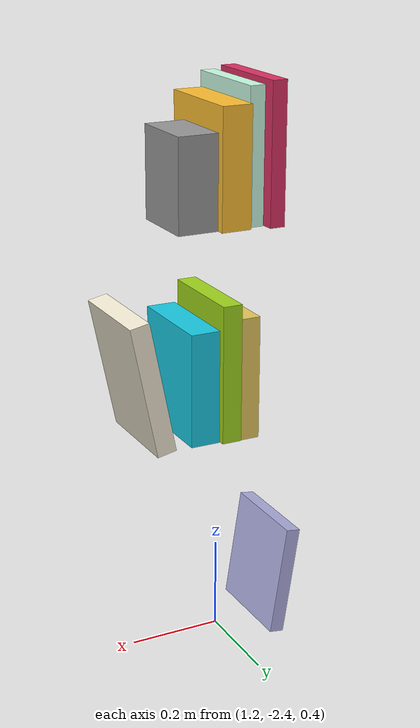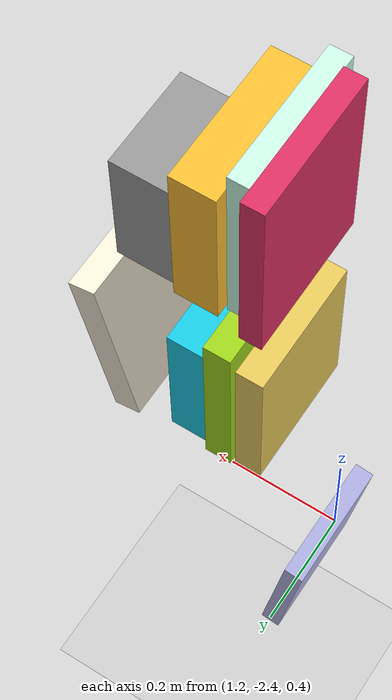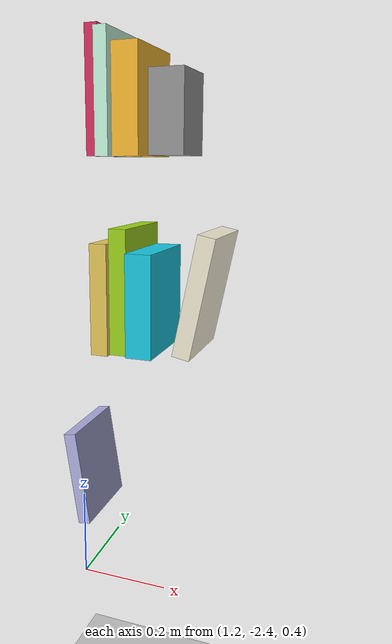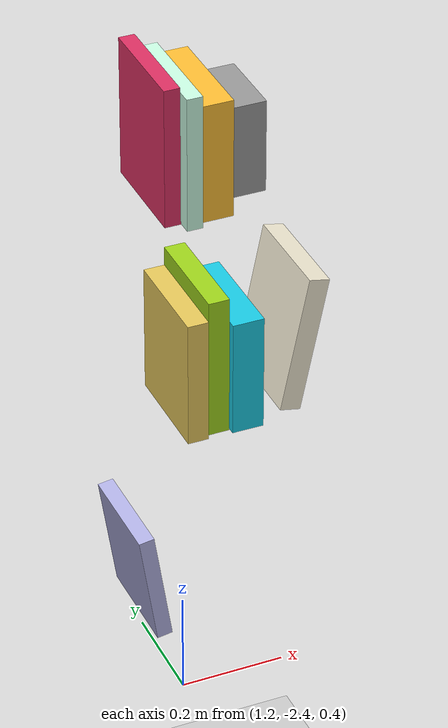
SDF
<sdf version="1.7">
 <world name="default">
  <model name="ground_plane">
   <static>1</static>
   <link name="link">
    <collision name="collision">
     <geometry><plane><normal>0 0 1</normal><size>100 100</size></plane></geometry>
     <surface>
      <contact><collide_bitmask>65535</collide_bitmask></contact>
      <friction><ode><mu>100</mu><mu2>50</mu2></ode></friction>
     </surface>
    </collision>
    <visual name="visual">
     <cast_shadows>0</cast_shadows>
     <geometry><plane><normal>0 0 1</normal><size>100 100</size></plane></geometry>
     <material>
      <script><uri>file://media/materials/scripts/gazebo.material</uri><name>Gazebo/Grey</name></script>
     </material>
    </visual>
   </link>
  </model>
  <model name="my_bookshelf">
   <link name="link_0_clone_0_clone_1_clone">
    <inertial>
     <mass>1</mass>
     <inertia>
      <ixx>0.166667</ixx>
      <ixy>0</ixy>
      <ixz>0</ixz>
      <iyy>0.166667</iyy>
      <iyz>0</iyz>
      <izz>0.166667</izz>
     </inertia>
    </inertial>
    <pose>0.171551 0.087441 1.07916 0 -0 0</pose>
    <visual name="visual">
     <pose>0 0 0 0.2 -0 0</pose>
     <geometry><box><size>0.2 0.04 0.27</size></box></geometry>
     <material>
      <lighting>1</lighting>
      <script><uri>file://media/materials/scripts/gazebo.material</uri><name>Gazebo/Grey</name></script>
      <shader type="pixel"><normal_map>__default__</normal_map></shader>
      <ambient>0.96 0 0 1</ambient>
      <diffuse>0.96 0.93 0.84 1</diffuse>
      <specular>0.01 0.01 0.01 1</specular>
      <emissive>0 0 0 1</emissive>
     </material>
    </visual>
    <collision name="collision">
     <pose>0 0 0 0.2 -0 0</pose>
     <geometry><box><size>0.2 0.04 0.27</size></box></geometry>
     <surface>
      <friction>
       <ode><mu>1</mu><mu2>1</mu2><fdir1>0 0 0</fdir1><slip1>0</slip1><slip2>0</slip2></ode>
       <torsional>
        <coefficient>1</coefficient>
        <patch_radius>0</patch_radius>
        <surface_radius>0</surface_radius>
        <use_patch_radius>1</use_patch_radius>
        <ode><slip>0</slip></ode>
       </torsional>
      </friction>
      <bounce><restitution_coefficient>0</restitution_coefficient><threshold>1e+06</threshold></bounce>
      <contact>
       <collide_without_contact>0</collide_without_contact>
       <collide_without_contact_bitmask>1</collide_without_contact_bitmask>
       <collide_bitmask>1</collide_bitmask>
       <ode>
        <soft_cfm>0</soft_cfm>
        <soft_erp>0.2</soft_erp>
        <kp>1e+13</kp>
        <kd>1</kd>
        <max_vel>0.01</max_vel>
        <min_depth>0</min_depth>
       </ode>
       <bullet>
        <split_impulse>1</split_impulse>
        <split_impulse_penetration_threshold>-0.01</split_impulse_penetration_threshold>
        <soft_cfm>0</soft_cfm>
        <soft_erp>0.2</soft_erp>
        <kp>1e+13</kp>
        <kd>1</kd>
       </bullet>
      </contact>
     </surface>
    </collision>
   </link>
   <link name="link_0_clone_0_clone_1_clone_1">
    <inertial>
     <mass>1</mass>
     <inertia>
      <ixx>0.166667</ixx>
      <ixy>0</ixy>
      <ixz>0</ixz>
      <iyy>0.166667</iyy>
      <iyz>0</iyz>
      <izz>0.166667</izz>
     </inertia>
    </inertial>
    <pose>0.212864 0.174398 1.46448 0 -0 0</pose>
    <visual name="visual">
     <geometry><box><size>0.14 0.08 0.18</size></box></geometry>
     <material>
      <lighting>1</lighting>
      <script><uri>file://media/materials/scripts/gazebo.material</uri><name>Gazebo/Grey</name></script>
      <shader type="pixel"><normal_map>__default__</normal_map></shader>
      <ambient>0.945 0.95 0.95 1</ambient>
      <diffuse>0.94 0.95 0.95 1</diffuse>
      <specular>0.01 0.01 0.01 1</specular>
      <emissive>0 0 0 1</emissive>
     </material>
    </visual>
    <collision name="collision">
     <geometry><box><size>0.14 0.08 0.18</size></box></geometry>
     <surface>
      <friction>
       <ode><mu>1</mu><mu2>1</mu2><fdir1>0 0 0</fdir1><slip1>0</slip1><slip2>0</slip2></ode>
       <torsional>
        <coefficient>1</coefficient>
        <patch_radius>0</patch_radius>
        <surface_radius>0</surface_radius>
        <use_patch_radius>1</use_patch_radius>
        <ode><slip>0</slip></ode>
       </torsional>
      </friction>
      <bounce><restitution_coefficient>0</restitution_coefficient><threshold>1e+06</threshold></bounce>
      <contact>
       <collide_without_contact>0</collide_without_contact>
       <collide_without_contact_bitmask>1</collide_without_contact_bitmask>
       <collide_bitmask>1</collide_bitmask>
       <ode>
        <soft_cfm>0</soft_cfm>
        <soft_erp>0.2</soft_erp>
        <kp>1e+13</kp>
        <kd>1</kd>
        <max_vel>0.01</max_vel>
        <min_depth>0</min_depth>
       </ode>
       <bullet>
        <split_impulse>1</split_impulse>
        <split_impulse_penetration_threshold>-0.01</split_impulse_penetration_threshold>
        <soft_cfm>0</soft_cfm>
        <soft_erp>0.2</soft_erp>
        <kp>1e+13</kp>
        <kd>1</kd>
       </bullet>
      </contact>
     </surface>
    </collision>
   </link>
   <link name="link_0_clone_clone_1_clone_clone_0">
    <inertial>
     <mass>1</mass>
     <inertia>
      <ixx>0.166667</ixx>
      <ixy>0</ixy>
      <ixz>0</ixz>
      <iyy>0.166667</iyy>
      <iyz>0</iyz>
      <izz>0.166667</izz>
     </inertia>
    </inertial>
    <pose>0.192048 0.247985 1.48769 0 -0 0</pose>
    <visual name="visual">
     <geometry><box><size>0.2 0.06 0.23</size></box></geometry>
     <material>
      <lighting>1</lighting>
      <script><uri>file://media/materials/scripts/gazebo.material</uri><name>Gazebo/Grey</name></script>
      <shader type="pixel"><normal_map>__default__</normal_map></shader>
      <ambient>1 0.75 0.2 1</ambient>
      <diffuse>1 0.75 0.2 1</diffuse>
      <specular>0.01 0.01 0.01 1</specular>
      <emissive>0 0 0 1</emissive>
     </material>
    </visual>
    <collision name="collision">
     <geometry><box><size>0.2 0.06 0.23</size></box></geometry>
     <surface>
      <friction>
       <ode><mu>1</mu><mu2>1</mu2><fdir1>0 0 0</fdir1><slip1>0</slip1><slip2>0</slip2></ode>
       <torsional>
        <coefficient>1</coefficient>
        <patch_radius>0</patch_radius>
        <surface_radius>0</surface_radius>
        <use_patch_radius>1</use_patch_radius>
        <ode><slip>0</slip></ode>
       </torsional>
      </friction>
      <bounce><restitution_coefficient>0</restitution_coefficient><threshold>1e+06</threshold></bounce>
      <contact>
       <collide_without_contact>0</collide_without_contact>
       <collide_without_contact_bitmask>1</collide_without_contact_bitmask>
       <collide_bitmask>1</collide_bitmask>
       <ode>
        <soft_cfm>0</soft_cfm>
        <soft_erp>0.2</soft_erp>
        <kp>1e+13</kp>
        <kd>1</kd>
        <max_vel>0.01</max_vel>
        <min_depth>0</min_depth>
       </ode>
       <bullet>
        <split_impulse>1</split_impulse>
        <split_impulse_penetration_threshold>-0.01</split_impulse_penetration_threshold>
        <soft_cfm>0</soft_cfm>
        <soft_erp>0.2</soft_erp>
        <kp>1e+13</kp>
        <kd>1</kd>
       </bullet>
      </contact>
     </surface>
    </collision>
   </link>
   <link name="link_0_clone_clone_1_clone_clone_clone_clone_1">
    <inertial>
     <mass>1</mass>
     <inertia>
      <ixx>0.166667</ixx>
      <ixy>0</ixy>
      <ixz>0</ixz>
      <iyy>0.166667</iyy>
      <iyz>0</iyz>
      <izz>0.166667</izz>
     </inertia>
    </inertial>
    <pose>0.177653 0.295864 1.50208 0 -0 0</pose>
    <visual name="visual">
     <geometry><box><size>0.2 0.03 0.26</size></box></geometry>
     <material>
      <lighting>1</lighting>
      <script><uri>file://media/materials/scripts/gazebo.material</uri><name>Gazebo/Grey</name></script>
      <shader type="pixel"><normal_map>__default__</normal_map></shader>
      <ambient>0 1 0.9 1</ambient>
      <diffuse>0.8 1 0.9 1</diffuse>
      <specular>0.01 0.01 0.01 1</specular>
      <emissive>0 0 0 1</emissive>
     </material>
    </visual>
    <collision name="collision">
     <geometry><box><size>0.2 0.03 0.26</size></box></geometry>
     <surface>
      <friction>
       <ode><mu>1</mu><mu2>1</mu2><fdir1>0 0 0</fdir1><slip1>0</slip1><slip2>0</slip2></ode>
       <torsional>
        <coefficient>1</coefficient>
        <patch_radius>0</patch_radius>
        <surface_radius>0</surface_radius>
        <use_patch_radius>1</use_patch_radius>
        <ode><slip>0</slip></ode>
       </torsional>
      </friction>
      <bounce><restitution_coefficient>0</restitution_coefficient><threshold>1e+06</threshold></bounce>
      <contact>
       <collide_without_contact>0</collide_without_contact>
       <collide_without_contact_bitmask>1</collide_without_contact_bitmask>
       <collide_bitmask>1</collide_bitmask>
       <ode>
        <soft_cfm>0</soft_cfm>
        <soft_erp>0.2</soft_erp>
        <kp>1e+13</kp>
        <kd>1</kd>
        <max_vel>0.01</max_vel>
        <min_depth>0</min_depth>
       </ode>
       <bullet>
        <split_impulse>1</split_impulse>
        <split_impulse_penetration_threshold>-0.01</split_impulse_penetration_threshold>
        <soft_cfm>0</soft_cfm>
        <soft_erp>0.2</soft_erp>
        <kp>1e+13</kp>
        <kd>1</kd>
       </bullet>
      </contact>
     </surface>
    </collision>
   </link>
   <link name="link_0_clone_clone_3_clone_0">
    <inertial>
     <mass>1</mass>
     <inertia>
      <ixx>0.166667</ixx>
      <ixy>0</ixy>
      <ixz>0</ixz>
      <iyy>0.166667</iyy>
      <iyz>0</iyz>
      <izz>0.166667</izz>
     </inertia>
    </inertial>
    <pose>0.153848 0.204861 1.05588 0 -0 0</pose>
    <visual name="visual">
     <geometry><box><size>0.2 0.06 0.23</size></box></geometry>
     <material>
      <lighting>1</lighting>
      <script><uri>file://media/materials/scripts/gazebo.material</uri><name>Gazebo/Grey</name></script>
      <shader type="pixel"><normal_map>__default__</normal_map></shader>
      <ambient>0.1 0.8 0.9 1</ambient>
      <diffuse>0.1 0.8 0.9 1</diffuse>
      <specular>0.01 0.01 0.01 1</specular>
      <emissive>0 0 0 1</emissive>
     </material>
    </visual>
    <collision name="collision">
     <geometry><box><size>0.2 0.06 0.23</size></box></geometry>
     <surface>
      <friction>
       <ode><mu>1</mu><mu2>1</mu2><fdir1>0 0 0</fdir1><slip1>0</slip1><slip2>0</slip2></ode>
       <torsional>
        <coefficient>1</coefficient>
        <patch_radius>0</patch_radius>
        <surface_radius>0</surface_radius>
        <use_patch_radius>1</use_patch_radius>
        <ode><slip>0</slip></ode>
       </torsional>
      </friction>
      <bounce><restitution_coefficient>0</restitution_coefficient><threshold>1e+06</threshold></bounce>
      <contact>
       <collide_without_contact>0</collide_without_contact>
       <collide_without_contact_bitmask>1</collide_without_contact_bitmask>
       <collide_bitmask>1</collide_bitmask>
       <ode>
        <soft_cfm>0</soft_cfm>
        <soft_erp>0.2</soft_erp>
        <kp>1e+13</kp>
        <kd>1</kd>
        <max_vel>0.01</max_vel>
        <min_depth>0</min_depth>
       </ode>
       <bullet>
        <split_impulse>1</split_impulse>
        <split_impulse_penetration_threshold>-0.01</split_impulse_penetration_threshold>
        <soft_cfm>0</soft_cfm>
        <soft_erp>0.2</soft_erp>
        <kp>1e+13</kp>
        <kd>1</kd>
       </bullet>
      </contact>
     </surface>
    </collision>
   </link>
   <link name="link_0_clone_clone_3_clone_clone">
    <inertial>
     <mass>1</mass>
     <inertia>
      <ixx>0.166667</ixx>
      <ixy>0</ixy>
      <ixz>0</ixz>
      <iyy>0.166667</iyy>
      <iyz>0</iyz>
      <izz>0.166667</izz>
     </inertia>
    </inertial>
    <pose>0.179721 0.375318 0.612073 0 -0 0</pose>
    <visual name="visual">
     <pose>0 0 0 -0.15 0 0</pose>
     <geometry><box><size>0.2 0.03 0.23</size></box></geometry>
     <material>
      <lighting>1</lighting>
      <script><uri>file://media/materials/scripts/gazebo.material</uri><name>Gazebo/Grey</name></script>
      <shader type="pixel"><normal_map>__default__</normal_map></shader>
      <ambient>0 0.1 0.9 1</ambient>
      <diffuse>0.7 0.7 0.9 1</diffuse>
      <specular>0.01 0.01 0.01 1</specular>
      <emissive>0 0 0 1</emissive>
     </material>
    </visual>
    <collision name="collision">
     <pose>0 0 0 -0.15 0 0</pose>
     <geometry><box><size>0.2 0.03 0.23</size></box></geometry>
     <surface>
      <friction>
       <ode><mu>1</mu><mu2>1</mu2><fdir1>0 0 0</fdir1><slip1>0</slip1><slip2>0</slip2></ode>
       <torsional>
        <coefficient>1</coefficient>
        <patch_radius>0</patch_radius>
        <surface_radius>0</surface_radius>
        <use_patch_radius>1</use_patch_radius>
        <ode><slip>0</slip></ode>
       </torsional>
      </friction>
      <bounce><restitution_coefficient>0</restitution_coefficient><threshold>1e+06</threshold></bounce>
      <contact>
       <collide_without_contact>0</collide_without_contact>
       <collide_without_contact_bitmask>1</collide_without_contact_bitmask>
       <collide_bitmask>1</collide_bitmask>
       <ode>
        <soft_cfm>0</soft_cfm>
        <soft_erp>0.2</soft_erp>
        <kp>1e+13</kp>
        <kd>1</kd>
        <max_vel>0.01</max_vel>
        <min_depth>0</min_depth>
       </ode>
       <bullet>
        <split_impulse>1</split_impulse>
        <split_impulse_penetration_threshold>-0.01</split_impulse_penetration_threshold>
        <soft_cfm>0</soft_cfm>
        <soft_erp>0.2</soft_erp>
        <kp>1e+13</kp>
        <kd>1</kd>
       </bullet>
      </contact>
     </surface>
    </collision>
   </link>
   <link name="link_0_clone_clone_3_clone_clone_0">
    <inertial>
     <mass>1</mass>
     <inertia>
      <ixx>0.166667</ixx>
      <ixy>0</ixy>
      <ixz>0</ixz>
      <iyy>0.166667</iyy>
      <iyz>0</iyz>
      <izz>0.166667</izz>
     </inertia>
    </inertial>
    <pose>0.20211 0.327248 1.50772 0 -0 0</pose>
    <visual name="visual">
     <geometry><box><size>0.2 0.03 0.27</size></box></geometry>
     <material>
      <lighting>1</lighting>
      <script><uri>file://media/materials/scripts/gazebo.material</uri><name>Gazebo/Grey</name></script>
      <shader type="pixel"><normal_map>__default__</normal_map></shader>
      <ambient>0.87 0.19 0.39 1</ambient>
      <diffuse>0.87 0.19 0.39 1</diffuse>
      <specular>0.01 0.01 0.01 1</specular>
      <emissive>0 0 0 1</emissive>
     </material>
    </visual>
    <collision name="collision">
     <geometry><box><size>0.2 0.03 0.27</size></box></geometry>
     <surface>
      <friction>
       <ode><mu>1</mu><mu2>1</mu2><fdir1>0 0 0</fdir1><slip1>0</slip1><slip2>0</slip2></ode>
       <torsional>
        <coefficient>1</coefficient>
        <patch_radius>0</patch_radius>
        <surface_radius>0</surface_radius>
        <use_patch_radius>1</use_patch_radius>
        <ode><slip>0</slip></ode>
       </torsional>
      </friction>
      <bounce><restitution_coefficient>0</restitution_coefficient><threshold>1e+06</threshold></bounce>
      <contact>
       <collide_without_contact>0</collide_without_contact>
       <collide_without_contact_bitmask>1</collide_without_contact_bitmask>
       <collide_bitmask>1</collide_bitmask>
       <ode>
        <soft_cfm>0</soft_cfm>
        <soft_erp>0.2</soft_erp>
        <kp>1e+13</kp>
        <kd>1</kd>
        <max_vel>0.01</max_vel>
        <min_depth>0</min_depth>
       </ode>
       <bullet>
        <split_impulse>1</split_impulse>
        <split_impulse_penetration_threshold>-0.01</split_impulse_penetration_threshold>
        <soft_cfm>0</soft_cfm>
        <soft_erp>0.2</soft_erp>
        <kp>1e+13</kp>
        <kd>1</kd>
       </bullet>
      </contact>
     </surface>
    </collision>
   </link>
   <link name="link_0_clone_clone_4">
    <inertial>
     <mass>1</mass>
     <inertia>
      <ixx>0.166667</ixx>
      <ixy>0</ixy>
      <ixz>0</ixz>
      <iyy>0.166667</iyy>
      <iyz>0</iyz>
      <izz>0.166667</izz>
     </inertia>
    </inertial>
    <pose>0.157579 0.299409 1.06351 0 -0 0</pose>
    <visual name="visual">
     <geometry><box><size>0.2 0.04 0.25</size></box></geometry>
     <material>
      <lighting>1</lighting>
      <script><uri>file://media/materials/scripts/gazebo.material</uri><name>Gazebo/Grey</name></script>
      <shader type="pixel"><normal_map>__default__</normal_map></shader>
      <ambient>0.91 0.79 0.36 1</ambient>
      <diffuse>0.91 0.79 0.36 1</diffuse>
      <specular>0.01 0.01 0.01 1</specular>
      <emissive>0 0 0 1</emissive>
     </material>
    </visual>
    <collision name="collision">
     <geometry><box><size>0.2 0.04 0.25</size></box></geometry>
     <surface>
      <friction>
       <ode><mu>1</mu><mu2>1</mu2><fdir1>0 0 0</fdir1><slip1>0</slip1><slip2>0</slip2></ode>
       <torsional>
        <coefficient>1</coefficient>
        <patch_radius>0</patch_radius>
        <surface_radius>0</surface_radius>
        <use_patch_radius>1</use_patch_radius>
        <ode><slip>0</slip></ode>
       </torsional>
      </friction>
      <bounce><restitution_coefficient>0</restitution_coefficient><threshold>1e+06</threshold></bounce>
      <contact>
       <collide_without_contact>0</collide_without_contact>
       <collide_without_contact_bitmask>1</collide_without_contact_bitmask>
       <collide_bitmask>1</collide_bitmask>
       <ode>
        <soft_cfm>0</soft_cfm>
        <soft_erp>0.2</soft_erp>
        <kp>1e+13</kp>
        <kd>1</kd>
        <max_vel>0.01</max_vel>
        <min_depth>0</min_depth>
       </ode>
       <bullet>
        <split_impulse>1</split_impulse>
        <split_impulse_penetration_threshold>-0.01</split_impulse_penetration_threshold>
        <soft_cfm>0</soft_cfm>
        <soft_erp>0.2</soft_erp>
        <kp>1e+13</kp>
        <kd>1</kd>
       </bullet>
      </contact>
     </surface>
    </collision>
   </link>
   <link name="link_0_clone_clone_clone_0">
    <inertial>
     <mass>1</mass>
     <inertia>
      <ixx>0.166667</ixx>
      <ixy>0</ixy>
      <ixz>0</ixz>
      <iyy>0.166667</iyy>
      <iyz>0</iyz>
      <izz>0.166667</izz>
     </inertia>
    </inertial>
    <pose>0.164689 0.256666 1.08106 0 -0 0</pose>
    <visual name="visual">
     <geometry><box><size>0.2 0.04 0.28</size></box></geometry>
     <material>
      <lighting>1</lighting>
      <script><uri>file://media/materials/scripts/gazebo.material</uri><name>Gazebo/Grey</name></script>
      <shader type="pixel"><normal_map>__default__</normal_map></shader>
      <ambient>0.63 0.84 0.11 1</ambient>
      <diffuse>0.63 0.84 0.11 1</diffuse>
      <specular>0.01 0.01 0.01 1</specular>
      <emissive>0 0 0 1</emissive>
     </material>
    </visual>
    <collision name="collision">
     <geometry><box><size>0.2 0.04 0.28</size></box></geometry>
     <surface>
      <friction>
       <ode><mu>1</mu><mu2>1</mu2><fdir1>0 0 0</fdir1><slip1>0</slip1><slip2>0</slip2></ode>
       <torsional>
        <coefficient>1</coefficient>
        <patch_radius>0</patch_radius>
        <surface_radius>0</surface_radius>
        <use_patch_radius>1</use_patch_radius>
        <ode><slip>0</slip></ode>
       </torsional>
      </friction>
      <bounce><restitution_coefficient>0</restitution_coefficient><threshold>1e+06</threshold></bounce>
      <contact>
       <collide_without_contact>0</collide_without_contact>
       <collide_without_contact_bitmask>1</collide_without_contact_bitmask>
       <collide_bitmask>1</collide_bitmask>
       <ode>
        <soft_cfm>0</soft_cfm>
        <soft_erp>0.2</soft_erp>
        <kp>1e+13</kp>
        <kd>1</kd>
        <max_vel>0.01</max_vel>
        <min_depth>0</min_depth>
       </ode>
       <bullet>
        <split_impulse>1</split_impulse>
        <split_impulse_penetration_threshold>-0.01</split_impulse_penetration_threshold>
        <soft_cfm>0</soft_cfm>
        <soft_erp>0.2</soft_erp>
        <kp>1e+13</kp>
        <kd>1</kd>
       </bullet>
      </contact>
     </surface>
    </collision>
   </link>
   <static>1</static>
   <pose>1.53755 -2.44298 -0 0 -0 1.5708</pose>
  </model>
 </world>
</sdf>
